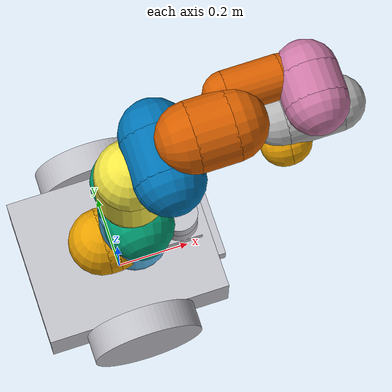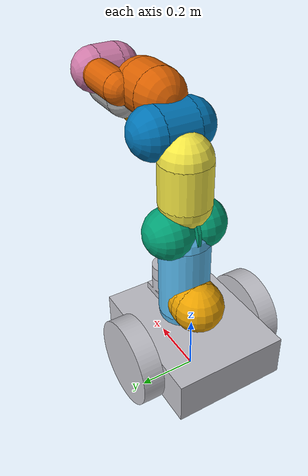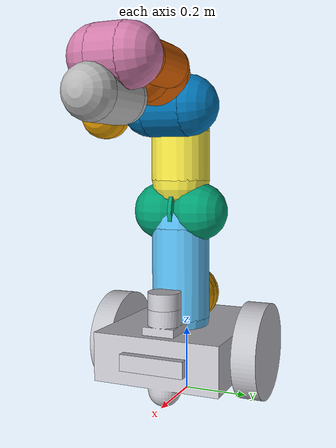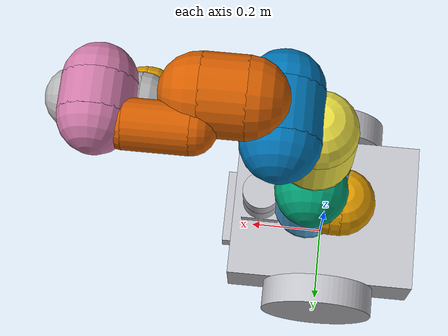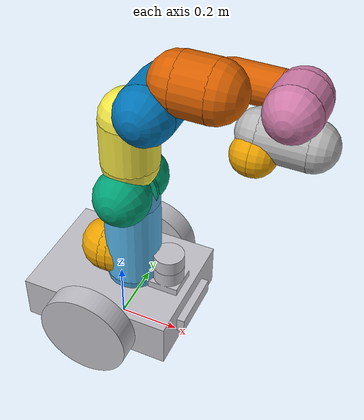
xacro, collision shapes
<?xml version="1.0" ?>
<robot name="moodz" xmlns:xacro="http://www.ros.org/wiki/xacro">
<xacro:include filename="$(find moodz_description)/urdf/materials.xacro" />
<xacro:include filename="$(find moodz_description)/urdf/moodz.trans" />
<xacro:include filename="$(find moodz_description)/urdf/moodz.gazebo" />

<link name="panda_link0">
    <visual>
        <geometry>
            <mesh filename="package://franka_description/meshes/visual/link0.dae" />
        </geometry>
    </visual>
    <collision>
        <origin rpy="0 1.5707963267948966 0" xyz="-0.075 0 0.06" />
        <geometry>
            <cylinder length="0.03" radius="0.09" />
        </geometry>
    </collision>
    <collision>
        <origin rpy="0 0 0" xyz="-0.06 0 0.06" />
        <geometry>
            <sphere radius="0.09" />
        </geometry>
    </collision>
    <collision>
        <origin rpy="0 0 0" xyz="-0.09 0 0.06" />
        <geometry>
            <sphere radius="0.09" />
        </geometry>
    </collision>
    <inertial>
        <mass value="0.1" />
        <origin xyz="0 0 0" rpy="0 0 0" />
        <inertia ixx="0.03" iyy="0.03" izz="0.03" ixy="0.0" ixz="0.0" iyz="0.0" />
    </inertial>
</link>
<link name="panda_link1">
    <visual>
        <geometry>
            <mesh filename="package://franka_description/meshes/visual/link1.dae" />
        </geometry>
    </visual>
    <collision>
        <origin rpy="0 0 0" xyz="0 0 -0.1915" />
        <geometry>
            <cylinder length="0.2830" radius="0.09" />
        </geometry>
    </collision>
    <collision>
        <origin rpy="0 0 0" xyz="0 0 -0.333" />
        <geometry>
            <sphere radius="0.09" />
        </geometry>
    </collision>
    <collision>
        <origin rpy="0 0 0" xyz="0 0 -0.05" />
        <geometry>
            <sphere radius="0.09" />
        </geometry>
    </collision>
    <inertial>
        <mass value="0.1" />
        <origin xyz="0 0 0" rpy="0 0 0" />
        <inertia ixx="0.03" iyy="0.03" izz="0.03" ixy="0.0" ixz="0.0" iyz="0.0" />
    </inertial>
</link>

<link name="panda_link2">
    <visual>
        <geometry>
            <mesh filename="package://franka_description/meshes/visual/link2.dae" />
        </geometry>
    </visual>
    <collision>
        <origin rpy="0 0 0" xyz="0 0 0" />
        <geometry>
            <cylinder length="0.012" radius="0.09" />
        </geometry>
    </collision>
    <collision>
        <origin rpy="0 0 0" xyz="0 0 -0.06" />
        <geometry>
            <sphere radius="0.09" />
        </geometry>
    </collision>
    <collision>
        <origin rpy="0 0 0" xyz="0 0 0.06" />
        <geometry>
            <sphere radius="0.09" />
        </geometry>
    </collision>
    <inertial>
        <mass value="0.1" />
        <origin xyz="0 0 0" rpy="0 0 0" />
        <inertia ixx="0.03" iyy="0.03" izz="0.03" ixy="0.0" ixz="0.0" iyz="0.0" />
    </inertial>
</link>

<link name="panda_link3">
    <visual>
        <geometry>
            <mesh filename="package://franka_description/meshes/visual/link3.dae" />
        </geometry>
    </visual>
    <collision>
        <origin rpy="0 0 0" xyz="0 0 -0.145" />
        <geometry>
            <cylinder length="0.15" radius="0.09" />
        </geometry>
    </collision>
    <collision>
        <origin rpy="0 0 0" xyz="0 0 -0.22" />
        <geometry>
            <sphere radius="0.09" />
        </geometry>
    </collision>
    <collision>
        <origin rpy="0 0 0" xyz="0 0 -0.07" />
        <geometry>
            <sphere radius="0.09" />
        </geometry>
    </collision>
    <inertial>
        <mass value="0.1" />
        <origin xyz="0 0 0" rpy="0 0 0" />
        <inertia ixx="0.03" iyy="0.03" izz="0.03" ixy="0.0" ixz="0.0" iyz="0.0" />
    </inertial>
</link>

<link name="panda_link4">
    <visual>
        <geometry>
            <mesh filename="package://franka_description/meshes/visual/link4.dae" />
        </geometry>
    </visual>
    <collision>
        <origin rpy="0 0 0" xyz="0 0 0" />
        <geometry>
            <cylinder length="0.12" radius="0.09" />
        </geometry>
    </collision>
    <collision>
        <origin rpy="0 0 0" xyz="0 0 0.06" />
        <geometry>
            <sphere radius="0.09" />
        </geometry>
    </collision>
    <collision>
        <origin rpy="0 0 0" xyz="0 0 -0.06" />
        <geometry>
            <sphere radius="0.09" />
        </geometry>
    </collision>
    <inertial>
        <mass value="0.1" />
        <origin xyz="0 0 0" rpy="0 0 0" />
        <inertia ixx="0.03" iyy="0.03" izz="0.03" ixy="0.0" ixz="0.0" iyz="0.0" />
    </inertial>
</link>

<link name="panda_link5">
    <visual>
        <geometry>
            <mesh filename="package://franka_description/meshes/visual/link5.dae" />
        </geometry>
    </visual>
    <collision>
        <origin rpy="0 0 0" xyz="0 0 -0.26" />
        <geometry>
            <cylinder length="0.1" radius="0.09" />
        </geometry>
    </collision>
    <collision>
        <origin rpy="0 0 0" xyz="0 0 -0.31" />
        <geometry>
            <sphere radius="0.09" />
        </geometry>
    </collision>
    <collision>
        <origin rpy="0 0 0" xyz="0 0 -0.21" />
        <geometry>
            <sphere radius="0.09" />
        </geometry>
    </collision>
    <collision>
        <origin rpy="0 0 0" xyz="0 0.08 -0.13" />
        <geometry>
            <cylinder length="0.14" radius="0.055" />
        </geometry>
    </collision>
    <collision>
        <origin rpy="0 0 0" xyz="0 0.08 -0.06" />
        <geometry>
            <sphere radius="0.055" />
        </geometry>
    </collision>
    <collision>
        <origin rpy="0 0 0" xyz="0 0.08 -0.20" />
        <geometry>
            <sphere radius="0.055" />
        </geometry>
    </collision>
    <inertial>
        <mass value="0.1" />
        <origin xyz="0 0 0" rpy="0 0 0" />
        <inertia ixx="0.03" iyy="0.03" izz="0.03" ixy="0.0" ixz="0.0" iyz="0.0" />
    </inertial>
</link>

<link name="panda_link6">
    <visual>
        <geometry>
            <mesh filename="package://franka_description/meshes/visual/link6.dae" />
        </geometry>
    </visual>
    <collision>
        <origin rpy="0 0 0" xyz="0 0 -0.03" />
        <geometry>
            <cylinder length="0.08" radius="0.08" />
        </geometry>
    </collision>
    <collision>
        <origin rpy="0 0 0" xyz="0 0 0.01" />
        <geometry>
            <sphere radius="0.08" />
        </geometry>
    </collision>
    <collision>
        <origin rpy="0 0 0" xyz="0 0 -0.07" />
        <geometry>
            <sphere radius="0.08" />
        </geometry>
    </collision>
    <inertial>
        <mass value="0.1" />
        <origin xyz="0 0 0" rpy="0 0 0" />
        <inertia ixx="0.03" iyy="0.03" izz="0.03" ixy="0.0" ixz="0.0" iyz="0.0" />
    </inertial>
</link>

<link name="panda_link7">
    <visual>
        <geometry>
            <mesh filename="package://franka_description/meshes/visual/link7.dae" />
        </geometry>
    </visual>
    <collision>
        <origin rpy="0 0 0" xyz="0 0 0.01" />
        <geometry>
            <cylinder length="0.14" radius="0.07" />
        </geometry>
    </collision>
    <collision>
        <origin rpy="0 0 0" xyz="0 0 0.08" />
        <geometry>
            <sphere radius="0.07" />
        </geometry>
    </collision>
    <collision>
        <origin rpy="0 0 0" xyz="0 0 -0.06" />
        <geometry>
            <sphere radius="0.07" />
        </geometry>
    </collision>
    <inertial>
        <mass value="0.1" />
        <origin xyz="0 0 0" rpy="0 0 0" />
        <inertia ixx="0.03" iyy="0.03" izz="0.03" ixy="0.0" ixz="0.0" iyz="0.0" />
    </inertial>
</link>

<link name="panda_link8">
    <collision>
        <origin rpy="3.141592653589793 1.5707963267948966 1.5707963267948966" xyz="0.0424 0.0424 -0.0250" />
        <geometry>
            <cylinder length="0.01" radius="0.06" />
        </geometry>
    </collision>
    <collision>
        <origin rpy="0 0 0" xyz="0.0424 0.0424 -0.02" />
        <geometry>
            <sphere radius="0.06" />
        </geometry>
    </collision>
    <collision>
        <origin rpy="0 0 0" xyz="0.0424 0.0424 -0.03" />
        <geometry>
            <sphere radius="0.06" />
        </geometry>
    </collision>
    <inertial>
        <mass value="0.1" />
        <origin xyz="0 0 0" rpy="0 0 0" />
        <inertia ixx="0.03" iyy="0.03" izz="0.03" ixy="0.0" ixz="0.0" iyz="0.0" />
    </inertial>
</link>
<link name="base_link">
  <inertial>
    <origin rpy="0 0 0" xyz="0.003563875604623609 3.688815650635801e-17 0.14918957693465243"/>
    <mass value="33.45253675533549"/>
    <inertia ixx="0.504373" ixy="0.0" ixz="-0.01326" iyy="0.793057" iyz="0.0" izz="1.138721"/>
  </inertial>
  <visual>
    <origin rpy="0 0 0" xyz="0 0 0"/>
    <geometry>
      <mesh filename="package://moodz_description/meshes/base_link.stl" scale="0.001 0.001 0.001"/>
    </geometry>
    <material name="silver"/>
  </visual>
  <collision>
    <origin rpy="0 0 0" xyz="0 0 0"/>
    <geometry>
      <mesh filename="package://moodz_description/meshes/base_link.stl" scale="0.001 0.001 0.001"/>
    </geometry>
  </collision>
</link>

<link name="right_wheel_1">
  <inertial>
    <origin rpy="0 0 0" xyz="0.0 -0.03750000000000003 2.7755575615628914e-17"/>
    <mass value="4.93033697072748"/>
    <inertia ixx="0.030044" ixy="0.0" ixz="-0.0" iyy="0.055466" iyz="-0.0" izz="0.030044"/>
  </inertial>
  <visual>
    <origin rpy="0 0 0" xyz="-0.0 0.2 -0.15"/>
    <geometry>
      <mesh filename="package://moodz_description/meshes/right_wheel_1.stl" scale="0.001 0.001 0.001"/>
    </geometry>
    <material name="silver"/>
  </visual>
  <collision>
    <origin rpy="0 0 0" xyz="-0.0 0.2 -0.15"/>
    <geometry>
      <mesh filename="package://moodz_description/meshes/right_wheel_1.stl" scale="0.001 0.001 0.001"/>
    </geometry>
  </collision>
</link>

<link name="left_wheel_1">
  <inertial>
    <origin rpy="0 0 0" xyz="0.0 0.03749999999999998 2.7755575615628914e-17"/>
    <mass value="4.93033697072748"/>
    <inertia ixx="0.030044" ixy="0.0" ixz="-0.0" iyy="0.055466" iyz="0.0" izz="0.030044"/>
  </inertial>
  <visual>
    <origin rpy="0 0 0" xyz="-0.0 -0.2 -0.15"/>
    <geometry>
      <mesh filename="package://moodz_description/meshes/left_wheel_1.stl" scale="0.001 0.001 0.001"/>
    </geometry>
    <material name="silver"/>
  </visual>
  <collision>
    <origin rpy="0 0 0" xyz="-0.0 -0.2 -0.15"/>
    <geometry>
      <mesh filename="package://moodz_description/meshes/left_wheel_1.stl" scale="0.001 0.001 0.001"/>
    </geometry>
  </collision>
</link>

<link name="lidar_1">
  <inertial>
    <origin rpy="0 0 0" xyz="-2.7755575615628914e-17 5.790023100122029e-18 0.024999999999999967"/>
    <mass value="0.5615596868291755"/>
    <inertia ixx="0.000468" ixy="0.0" ixz="-0.0" iyy="0.000468" iyz="0.0" izz="0.000702"/>
  </inertial>
  <visual>
    <origin rpy="0 0 0" xyz="-0.175 -0.0 -0.3"/>
    <geometry>
      <mesh filename="package://moodz_description/meshes/lidar_1.stl" scale="0.001 0.001 0.001"/>
    </geometry>
    <material name="silver"/>
  </visual>
  <collision>
    <origin rpy="0 0 0" xyz="-0.175 -0.0 -0.3"/>
    <geometry>
      <mesh filename="package://moodz_description/meshes/lidar_1.stl" scale="0.001 0.001 0.001"/>
    </geometry>
  </collision>
</link>

<link name="camera_1">
  <inertial>
    <origin rpy="0 0 0" xyz="0.012500000000000011 0.0 0.0"/>
    <mass value="0.3575"/>
    <inertia ixx="0.001266" ixy="0.0" ixz="0.0" iyy="9.3e-05" iyz="0.0" izz="0.00121"/>
  </inertial>
  <visual>
    <origin rpy="0 0 0" xyz="-0.25 -0.0 -0.15"/>
    <geometry>
      <mesh filename="package://moodz_description/meshes/camera_1.stl" scale="0.001 0.001 0.001"/>
    </geometry>
    <material name="silver"/>
  </visual>
  <collision>
    <origin rpy="0 0 0" xyz="-0.25 -0.0 -0.15"/>
    <geometry>
      <mesh filename="package://moodz_description/meshes/camera_1.stl" scale="0.001 0.001 0.001"/>
    </geometry>
  </collision>
</link>
<link name="camera_link_optical">
</link>
<joint name="camera_optical_joint" type="fixed">
    <origin xyz="0 0 0" rpy="-1.58 0 -1.58"/>
    <parent link="camera_1"/>
    <child link="camera_link_optical"/>
</joint>

<joint name="base_arm_connector" type="fixed">
  <origin rpy="0 0 0" xyz="0.05 0.0 0.25"/>
  <parent link="base_link"/>
  <child link="panda_link0"/>
  <axis xyz="0.0 0.0 1.0"/>
</joint>

<joint name="Rev1" type="continuous">
  <origin rpy="0 0 0" xyz="0.0 -0.2 0.15"/>
  <parent link="base_link"/>
  <child link="right_wheel_1"/>
  <axis xyz="0.0 1.0 0.0"/>
</joint>

<joint name="Rev2" type="continuous">
  <origin rpy="0 0 0" xyz="0.0 0.2 0.15"/>
  <parent link="base_link"/>
  <child link="left_wheel_1"/>
  <axis xyz="0.0 1.0 0.0"/>
</joint>

<joint name="Rev3" type="fixed">
  <origin rpy="0 0 0" xyz="0.175 0.0 0.3"/>
  <parent link="base_link"/>
  <child link="lidar_1"/>
  <axis xyz="0.0 1.0 0.0"/>
</joint>

<joint name="Rigid4" type="fixed">
  <origin rpy="0 0 0" xyz="0.25 0.0 0.15"/>
  <parent link="base_link"/>
  <child link="camera_1"/>
  <axis xyz="0 1 0"/>
</joint>

<joint name="panda_joint8" type="fixed">
    <origin rpy="0 0 0" xyz="0 0 0.107" />
    <parent link="panda_link7" />
    <child link="panda_link8" />
</joint>

<joint name="panda_joint1" type="revolute">
    <safety_controller k_position="100.0" k_velocity="40.0" soft_lower_limit="-2.8973" soft_upper_limit="2.8973" />
    <origin rpy="0 0 0" xyz="0 0 0.333" />
    <parent link="panda_link0" />
    <child link="panda_link1" />
    <axis xyz="0 0 1" />
    <limit effort="87" lower="-2.8973" upper="2.8973" velocity="2.1750" />
</joint>

<joint name="panda_joint2" type="revolute">
    <safety_controller k_position="100.0" k_velocity="40.0" soft_lower_limit="-1.7628" soft_upper_limit="1.7628" />
    <origin rpy="-1.5707963267948966 0 0" xyz="0 0 0" />
    <parent link="panda_link1" />
    <child link="panda_link2" />
    <axis xyz="0 0 1" />
    <limit effort="87" lower="-1.7628" upper="1.7628" velocity="2.1750" />
</joint>

<joint name="panda_joint3" type="revolute">
    <safety_controller k_position="100.0" k_velocity="40.0" soft_lower_limit="-2.8973" soft_upper_limit="2.8973" />
    <origin rpy="1.5707963267948966 0 0" xyz="0 -0.316 0" />
    <parent link="panda_link2" />
    <child link="panda_link3" />
    <axis xyz="0 0 1" />
    <limit effort="87" lower="-2.8973" upper="2.8973" velocity="2.1750" />
</joint>

<joint name="panda_joint4" type="revolute">
    <safety_controller k_position="100.0" k_velocity="40.0" soft_lower_limit="-3.0718" soft_upper_limit="-0.0698" />
    <origin rpy="1.5707963267948966 0 0" xyz="0.0825 0 0" />
    <parent link="panda_link3" />
    <child link="panda_link4" />
    <axis xyz="0 0 1" />
    <limit effort="87" lower="-3.0718" upper="-0.0698" velocity="2.1750" />
</joint>

<joint name="panda_joint5" type="revolute">
    <safety_controller k_position="100.0" k_velocity="40.0" soft_lower_limit="-2.8973" soft_upper_limit="2.8973" />
    <origin rpy="-1.5707963267948966 0 0" xyz="-0.0825 0.384 0" />
    <parent link="panda_link4" />
    <child link="panda_link5" />
    <axis xyz="0 0 1" />
    <limit effort="12" lower="-2.8973" upper="2.8973" velocity="2.6100" />
</joint>

<joint name="panda_joint6" type="revolute">
    <safety_controller k_position="100.0" k_velocity="40.0" soft_lower_limit="-0.0175" soft_upper_limit="3.7525" />
    <origin rpy="1.5707963267948966 0 0" xyz="0 0 0" />
    <parent link="panda_link5" />
    <child link="panda_link6" />
    <axis xyz="0 0 1" />
    <limit effort="12" lower="-0.0175" upper="3.7525" velocity="2.6100" />
</joint>

<joint name="panda_joint7" type="revolute">
    <safety_controller k_position="100.0" k_velocity="40.0" soft_lower_limit="-2.8973" soft_upper_limit="2.8973" />
    <origin rpy="1.5707963267948966 0 0" xyz="0.088 0 0" />
    <parent link="panda_link6" />
    <child link="panda_link7" />
    <axis xyz="0 0 1" />
    <limit effort="12" lower="-2.8973" upper="2.8973" velocity="2.6100" />
</joint>

</robot>

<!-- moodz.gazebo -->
<robot name="moodz" xmlns:xacro="http://www.ros.org/wiki/xacro" >

<xacro:property name="body_color" value="Gazebo/Silver" />

<gazebo reference="base_link">
  <material>${body_color}</material>
  <mu1>0.01</mu1>
  <mu2>0.01</mu2>
  <selfCollide>true</selfCollide>
  <gravity>true</gravity>
</gazebo>
<gazebo reference="right_wheel_1">
  <material>${body_color}</material>
  <mu1>1500</mu1>
  <mu2>1500</mu2>
  <selfCollide>true</selfCollide>
</gazebo>

<gazebo reference="left_wheel_1">
  <material>${body_color}</material>
  <mu1>1500</mu1>
  <mu2>1500</mu2>
  <selfCollide>true</selfCollide>
</gazebo>

<gazebo reference="lidar_1">
  <material>${body_color}</material>
  <mu1>0.2</mu1>
  <mu2>0.2</mu2>
  <selfCollide>true</selfCollide>
</gazebo>

<gazebo reference="camera_1">
  <material>${body_color}</material>
  <mu1>0.2</mu1>
  <mu2>0.2</mu2>
  <selfCollide>true</selfCollide>
</gazebo>
<gazebo>
  <plugin name="differential_drive_controller" filename="libgazebo_ros_diff_drive.so">

    <!-- Plugin update rate in Hz -->
    <updateRate>50</updateRate>

    <!-- Name of left joint, defaults to `left_joint` -->
    <leftJoint>Rev2</leftJoint>

    <!-- Name of right joint, defaults to `right_joint` -->
    <rightJoint>Rev1</rightJoint>

    <!-- The distance from the center of one wheel to the other, in meters, defaults to 0.34 m -->
    <wheelSeparation>0.5380</wheelSeparation>

    <!-- Diameter of the wheels, in meters, defaults to 0.15 m -->
    <wheelDiameter>0.2410</wheelDiameter>

    <!-- Wheel acceleration, in rad/s^2, defaults to 0.0 rad/s^2 -->
    <wheelAcceleration>1.0</wheelAcceleration>

    <!-- Maximum torque which the wheels can produce, in Nm, defaults to 5 Nm -->
    <wheelTorque>20</wheelTorque>

    <!-- Topic to receive geometry_msgs/Twist message commands, defaults to `cmd_vel` -->
    <commandTopic>cmd_vel</commandTopic>

    <!-- Topic to publish nav_msgs/Odometry messages, defaults to `odom` -->
    <odometryTopic>odom</odometryTopic>

    <!-- Odometry frame, defaults to `odom` -->
    <odometryFrame>odom</odometryFrame>

    <!-- Robot frame to calculate odometry from, defaults to `base_footprint` -->
    <robotBaseFrame>base_link</robotBaseFrame>

    <!-- Odometry source, 0 for ENCODER, 1 for WORLD, defaults to WORLD -->
    <odometrySource>1</odometrySource>

    <!-- Set to true to publish transforms for the wheel links, defaults to false -->
    <publishWheelTF>true</publishWheelTF>

    <!-- Set to true to publish transforms for the odometry, defaults to true -->
    <publishOdom>true</publishOdom>

    <!-- Set to true to publish sensor_msgs/JointState on /joint_states for the wheel joints, defaults to false -->
    <publishWheelJointState>true</publishWheelJointState>

    <!-- Set to true to swap right and left wheels, defaults to true -->
    <legacyMode>false</legacyMode>
  </plugin>
</gazebo>
  <!-- hokuyo -->
  <gazebo reference="lidar_1">
    <sensor type="ray" name="head_hokuyo_sensor">
      <pose>0 0 0 0 0 0</pose>
      <visualize>false</visualize>
      <update_rate>40</update_rate>
      <ray>
        <scan>
          <horizontal>
            <samples>720</samples>
            <resolution>1</resolution>
            <min_angle>-1.570796</min_angle>
            <max_angle>1.570796</max_angle>
          </horizontal>
        </scan>
        <range>
          <min>0.10</min>
          <max>30.0</max>
          <resolution>0.1</resolution>
        </range>
        <noise>
          <type>gaussian</type>
          <mean>0.0</mean>
          <stddev>0.01</stddev>
        </noise>
      </ray>
      <plugin name="gazebo_ros_head_hokuyo_controller" filename="libgazebo_ros_laser.so">
        <topicName>/moodz/laser/scan</topicName>
        <frameName>lidar_1</frameName>
      </plugin>
    </sensor>
  </gazebo>
  <gazebo reference="camera_1">
  <sensor name="camera_1_camera" type="depth">
    <update_rate>20</update_rate>
    <camera>
      <horizontal_fov>1.047198</horizontal_fov>
      <image>
        <width>640</width>
        <height>480</height>
        <format>R8G8B8</format>
      </image>
      <clip>
        <near>0.05</near>
        <far>3</far>
      </clip>
    </camera>
    <plugin name="camera_1_controller" filename="libgazebo_ros_openni_kinect.so">
      <baseline>0.2</baseline>
      <alwaysOn>true</alwaysOn>
      <updateRate>1.0</updateRate>
      <cameraName>camera_1_ir</cameraName>
      <imageTopicName>/camera_1/color/image_raw</imageTopicName>
      <cameraInfoTopicName>/camera_1/color/camera_info</cameraInfoTopicName>
      <depthImageTopicName>/camera_1/depth/image_raw</depthImageTopicName>
      <depthImageInfoTopicName>/camera_1/depth/camera_info</depthImageInfoTopicName>
      <pointCloudTopicName>/camera_1/depth/points</pointCloudTopicName>
      <frameName>camera_link_optical</frameName>
      <pointCloudCutoff>0.5</pointCloudCutoff>
      <pointCloudCutoffMax>3.0</pointCloudCutoffMax>
      <distortionK1>0.00000001</distortionK1>
      <distortionK2>0.00000001</distortionK2>
      <distortionK3>0.00000001</distortionK3>
      <distortionT1>0.00000001</distortionT1>
      <distortionT2>0.00000001</distortionT2>
      <CxPrime>0</CxPrime>
      <Cx>0</Cx>
      <Cy>0</Cy>
      <focalLength>0</focalLength>
      <hackBaseline>0</hackBaseline>
    </plugin>
  </sensor>
</gazebo>
<gazebo>
    <plugin name="gazebo_ros_control" filename="libgazebo_ros_control.so">
      <robotNamespace>/</robotNamespace>
    </plugin>
  </gazebo>
</robot>
